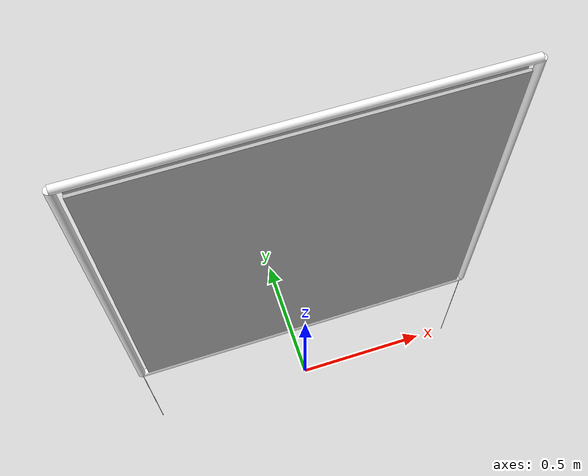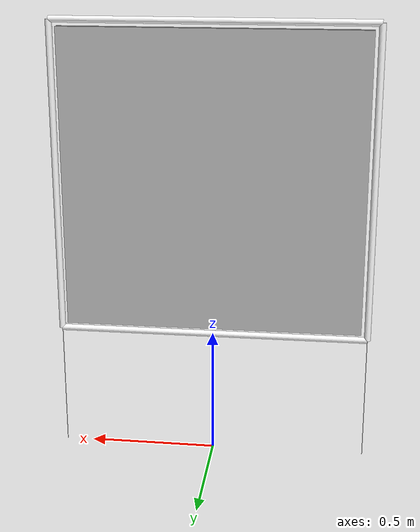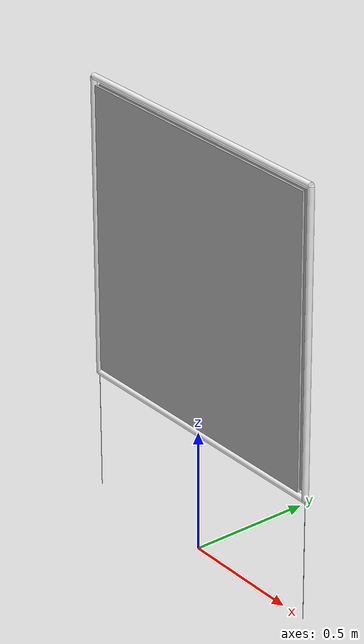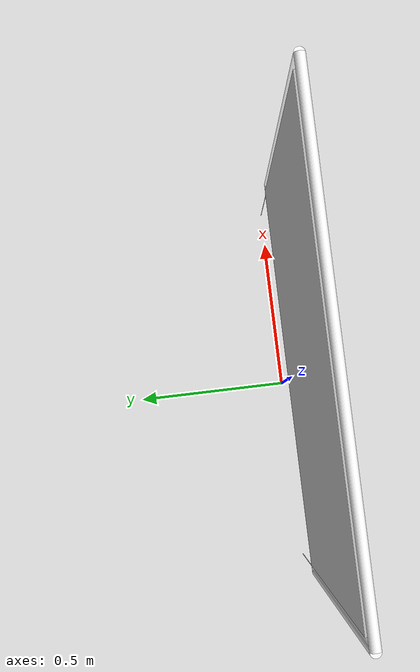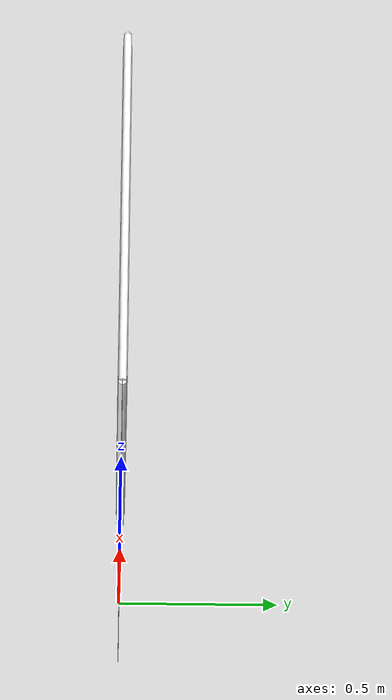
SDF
<?xml version="1.0"?>
<sdf version="1.11">  <model name="robosub23_buoy_v1">
    <static>1</static>

    <include>
      <uri>model://robosub23_buoy</uri>
    </include>

    <link name="box_front">
      <pose>0 -0.01 1.1096 0 0 0</pose>
      <visual name="box_front_vis">
        <geometry>
          <box>
            <size>1.1684 0.01 1.1684</size>
          </box>
        </geometry>
        <material>
          <script>
            <uri>file://materials/scripts/robosub23_symbols.material</uri>
            <name>TexturedShape/2023_buoy1</name>
          </script>
        </material>
      </visual>
      <collision name="box_front_collide">
        <geometry>
          <box>
            <size>1.1684 0.01 1.1684</size>
          </box>
        </geometry>
      </collision>
    </link>
    <link name="box_back">
      <pose>0 0.01 1.1096 0 0 3.1415926535897932</pose>
      <visual name="box_back_vis">
        <geometry>
          <box>
            <size>1.1684 0.01 1.1684</size>
          </box>
        </geometry>
        <material>
          <script>
            <uri>file://materials/scripts/robosub23_symbols.material</uri>
            <name>TexturedShape/2023_buoy2</name>
          </script>
        </material>
      </visual>
      <collision name="box_back_collide">
        <geometry>
          <box>
            <size>1.1684 0.01 1.1684</size>
          </box>
        </geometry>
      </collision>
    </link>
  </model>
</sdf>

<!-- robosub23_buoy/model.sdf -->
<sdf version="1.11">  <model name="robosub23_buoy">
    <static>1</static>

    <link name="buoy_top">
      <pose>0 0 1.7192 0 1.5707 0</pose>
      <visual name="buoy_top_vis">
        <geometry>
          <cylinder>
            <radius>0.0127</radius>
            <length>1.2192</length>
          </cylinder>
        </geometry>
        <material>
          <ambient>1 1 1 1</ambient>
          <diffuse>1 1 1 1</diffuse>
          <specular>0.1 0.1 0.1 1</specular>
        </material>
      </visual>
      <collision name="buoy_top_collide">
        <geometry>
          <cylinder>
            <radius>0.0127</radius>
            <length>1.2192</length>
          </cylinder>
        </geometry>
      </collision>
    </link>

    <link name="buoy_bottom">
      <pose>0 0 0.5 0 1.5707 0</pose>
      <visual name="buoy_bottom_vis">
        <geometry>
          <cylinder>
            <radius>0.0127</radius>
            <length>1.2192</length>
          </cylinder>
        </geometry>
        <material>
          <ambient>1 1 1 1</ambient>
          <diffuse>1 1 1 1</diffuse>
          <specular>0.1 0.1 0.1 1</specular>
        </material>
      </visual>
      <collision name="buoy_bottom_collide">
        <geometry>
          <cylinder>
            <radius>0.0127</radius>
            <length>1.2192</length>
          </cylinder>
        </geometry>
      </collision>
    </link>

    <link name="buoy_side_left">
      <pose>-0.6096 0 1.1096 0 0 0</pose>
      <visual name="buoy_side_left_vis">
        <geometry>
          <cylinder>
            <radius>0.0127</radius>
            <length>1.2192</length>
          </cylinder>
        </geometry>
        <material>
          <ambient>1 1 1 1</ambient>
          <diffuse>1 1 1 1</diffuse>
          <specular>0.1 0.1 0.1 1</specular>
        </material>
      </visual>
      <collision name="buoy_side_left_collide">
        <geometry>
          <cylinder>
            <radius>0.0127</radius>
            <length>1.2192</length>
          </cylinder>
        </geometry>
      </collision>
    </link>

    <link name="buoy_side_right">
      <pose>0.6096 0 1.1096 0 0 0</pose>
      <visual name="buoy_side_right_vis">
        <geometry>
          <cylinder>
            <radius>0.0127</radius>
            <length>1.2192</length>
          </cylinder>
        </geometry>
        <material>
          <ambient>1 1 1 1</ambient>
          <diffuse>1 1 1 1</diffuse>
          <specular>0.1 0.1 0.1 1</specular>
        </material>
      </visual>
      <collision name="buoy_side_right_collide">
        <geometry>
          <cylinder>
            <radius>0.0127</radius>
            <length>1.2192</length>
          </cylinder>
        </geometry>
      </collision>
    </link>

    <link name="buoy_mooring_left">
      <pose>-0.6096 0 0.25 0 0 0</pose>
      <visual name="buoy_mooring_left_vis">
        <geometry>
          <cylinder>
            <radius>0.001</radius>
            <length>0.5</length>
          </cylinder>
        </geometry>
        <material>
          <ambient>0 0 0 1</ambient>
          <diffuse>0 0 0 1</diffuse>
          <specular>0.1 0.1 0.1 1</specular>
        </material>
      </visual>
    </link>

    <link name="buoy_mooring_right">
      <pose>0.6096 0 0.25 0 0 0</pose>
      <visual name="buoy_mooring_right_vis">
        <geometry>
          <cylinder>
            <radius>0.001</radius>
            <length>0.5</length>
          </cylinder>
        </geometry>
        <material>
          <ambient>0 0 0 1</ambient>
          <diffuse>0 0 0 1</diffuse>
          <specular>0.1 0.1 0.1 1</specular>
        </material>
      </visual>
    </link>
  </model>
</sdf>
